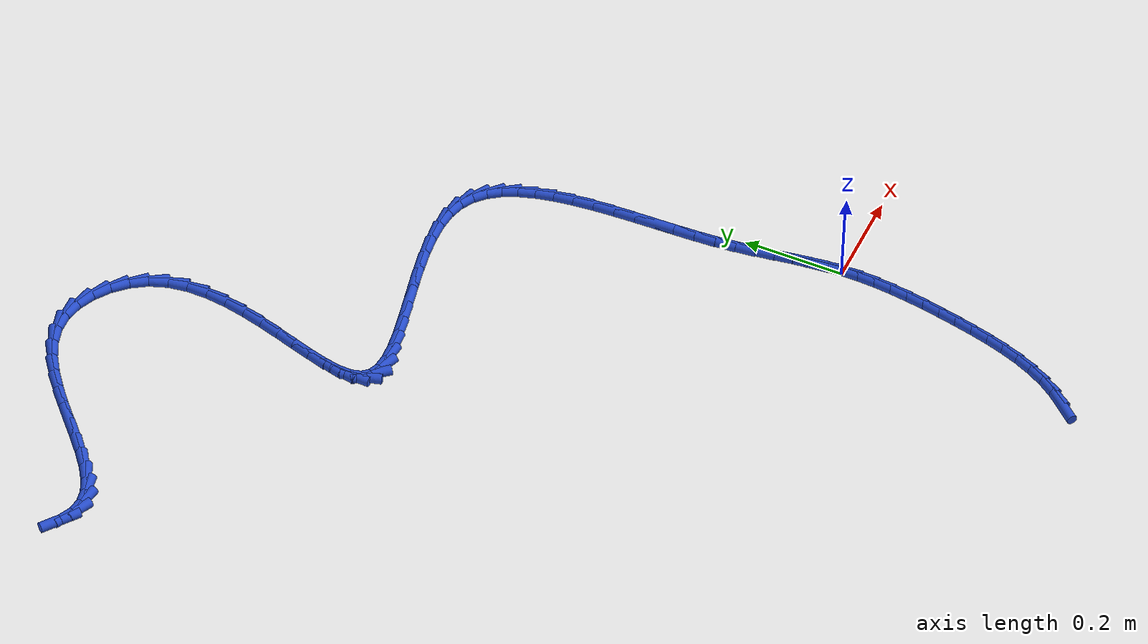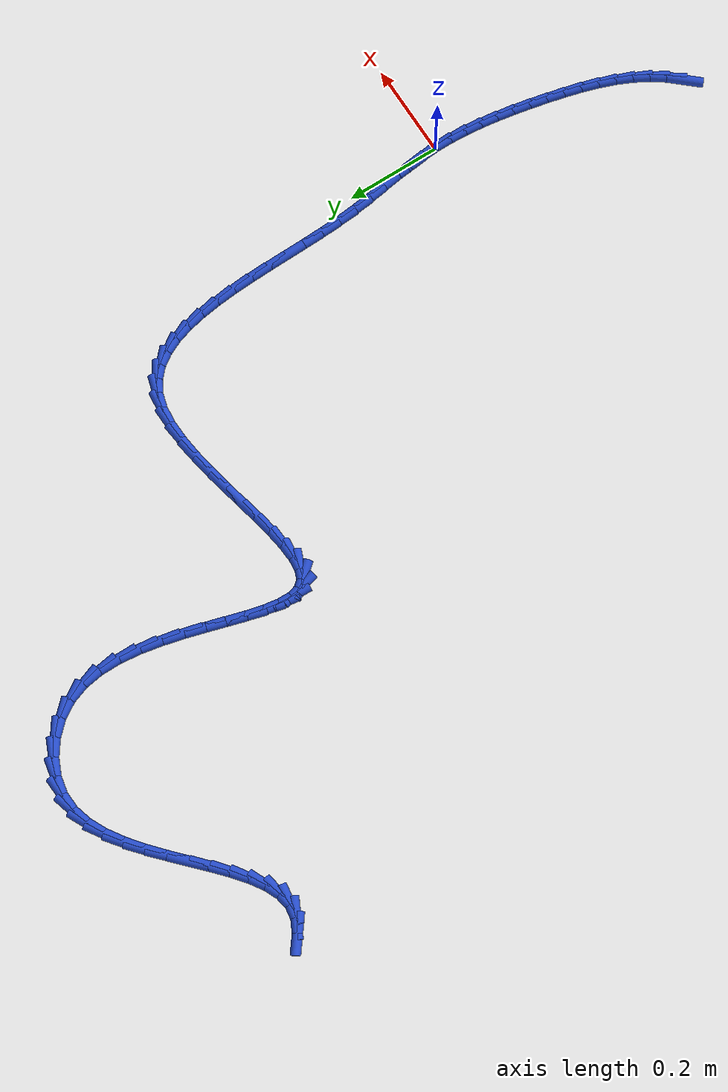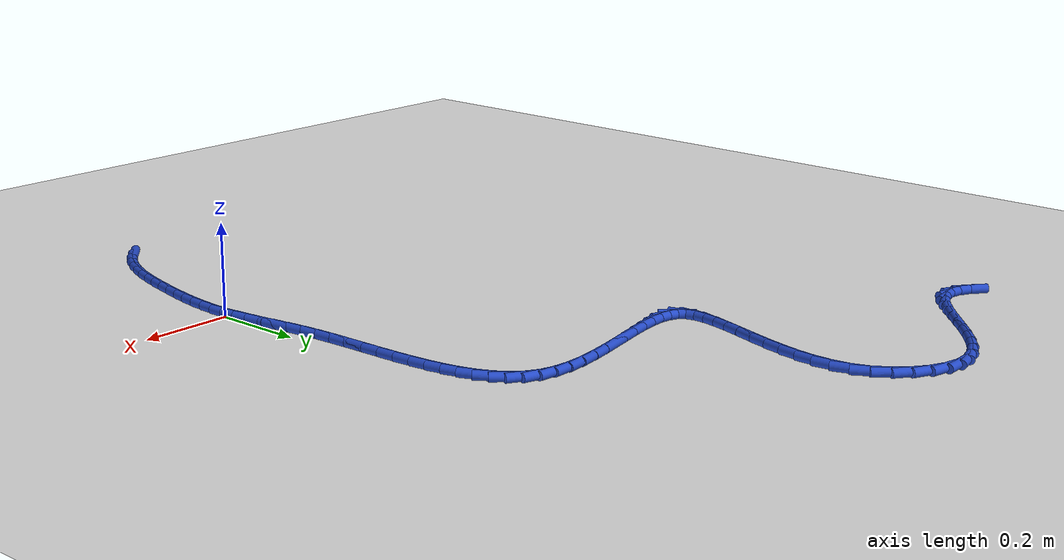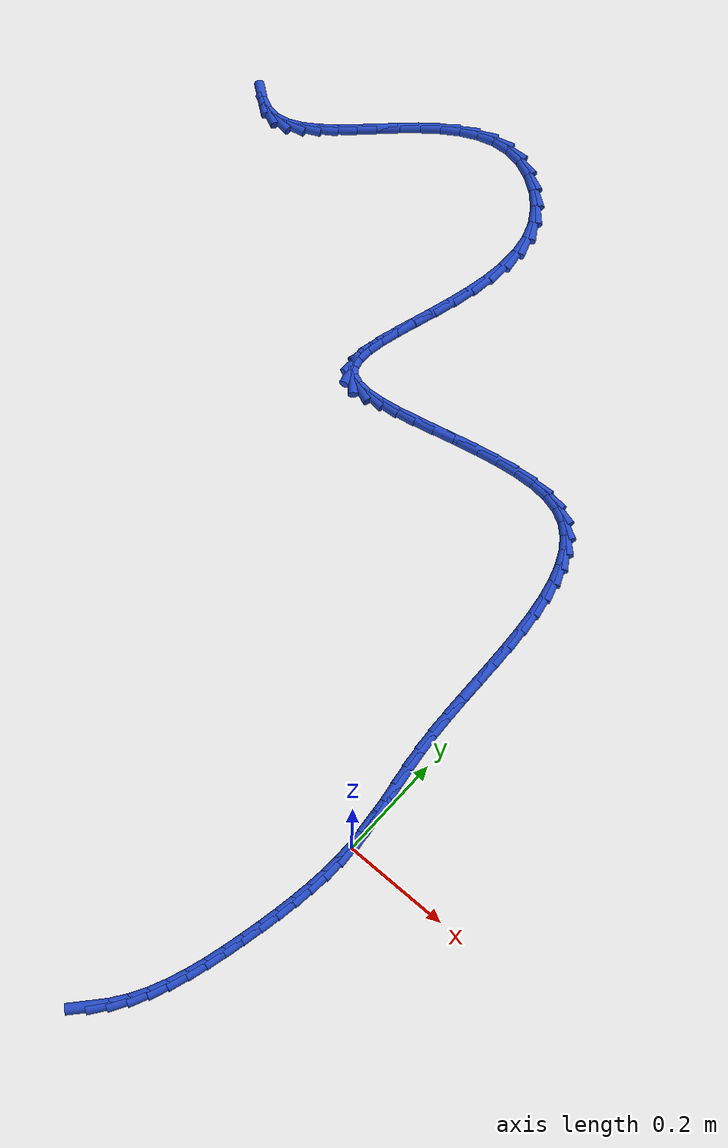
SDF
<sdf version="1.6">
 <world name="default">
  <model name="ground_plane">
   <static>1</static>
   <link name="link">
    <collision name="collision">
     <geometry><plane><normal>0 0 1</normal><size>100 100</size></plane></geometry>
     <surface><friction><ode><mu>100</mu><mu2>50</mu2></ode></friction></surface>
    </collision>
    <visual name="visual">
     <cast_shadows>0</cast_shadows>
     <geometry><plane><normal>0 0 1</normal><size>100 100</size></plane></geometry>
     <material>
      <script><uri>file://media/materials/scripts/gazebo.material</uri><name>Gazebo/WhiteGlow</name></script>
     </material>
    </visual>
   </link>
  </model>
  <model name="line">
   <link name="link_0">
    <pose>-1.734723475976807e-17 1.0408340855860843e-16 0.01 0 1.57 -1.5083408288933977</pose>
    <collision name="collision">
     <geometry><cylinder><radius>0.01</radius><length>0.08</length></cylinder></geometry>
    </collision>
    <visual name="visual">
     <material>
      <script><name>Gazebo/Blue</name><uri>file://media/materials/scripts/gazebo.material</uri></script>
     </material>
     <geometry><cylinder><radius>0.01</radius><length>0.08</length></cylinder></geometry>
    </visual>
   </link>
   <link name="link_1">
    <pose>-0.0021196836067384752 0.033894963377618756 0.01 0 1.57 -1.461341418618367</pose>
    <collision name="collision">
     <geometry><cylinder><radius>0.01</radius><length>0.08</length></cylinder></geometry>
    </collision>
    <visual name="visual">
     <material>
      <script><name>Gazebo/Blue</name><uri>file://media/materials/scripts/gazebo.material</uri></script>
     </material>
     <geometry><cylinder><radius>0.01</radius><length>0.08</length></cylinder></geometry>
    </visual>
   </link>
   <link name="link_2">
    <pose>-0.005830443476863865 0.06766164698499161 0.01 0 1.57 -1.4313954396183446</pose>
    <collision name="collision">
     <geometry><cylinder><radius>0.01</radius><length>0.08</length></cylinder></geometry>
    </collision>
    <visual name="visual">
     <material>
      <script><name>Gazebo/Blue</name><uri>file://media/materials/scripts/gazebo.material</uri></script>
     </material>
     <geometry><cylinder><radius>0.01</radius><length>0.08</length></cylinder></geometry>
    </visual>
   </link>
   <link name="link_3">
    <pose>-0.01060383328601112 0.10168173086542234 0.01 0 1.57 -1.4188233202473002</pose>
    <collision name="collision">
     <geometry><cylinder><radius>0.01</radius><length>0.08</length></cylinder></geometry>
    </collision>
    <visual name="visual">
     <material>
      <script><name>Gazebo/Blue</name><uri>file://media/materials/scripts/gazebo.material</uri></script>
     </material>
     <geometry><cylinder><radius>0.01</radius><length>0.08</length></cylinder></geometry>
    </visual>
   </link>
   <link name="link_4">
    <pose>-0.01591140670981516 0.13633689506221444 0.01 0 1.57 -1.4229340475392616</pose>
    <collision name="collision">
     <geometry><cylinder><radius>0.01</radius><length>0.08</length></cylinder></geometry>
    </collision>
    <visual name="visual">
     <material>
      <script><name>Gazebo/Blue</name><uri>file://media/materials/scripts/gazebo.material</uri></script>
     </material>
     <geometry><cylinder><radius>0.01</radius><length>0.08</length></cylinder></geometry>
    </visual>
   </link>
   <link name="link_5">
    <pose>-0.021224717423910914 0.1720088196186716 0.01 0 1.57 -1.4422786424298313</pose>
    <collision name="collision">
     <geometry><cylinder><radius>0.01</radius><length>0.08</length></cylinder></geometry>
    </collision>
    <visual name="visual">
     <material>
      <script><name>Gazebo/Blue</name><uri>file://media/materials/scripts/gazebo.material</uri></script>
     </material>
     <geometry><cylinder><radius>0.01</radius><length>0.08</length></cylinder></geometry>
    </visual>
   </link>
   <link name="link_6">
    <pose>-0.026015319103933298 0.2090791845780972 0.01 0 1.57 -1.4747929241966398</pose>
    <collision name="collision">
     <geometry><cylinder><radius>0.01</radius><length>0.08</length></cylinder></geometry>
    </collision>
    <visual name="visual">
     <material>
      <script><name>Gazebo/Blue</name><uri>file://media/materials/scripts/gazebo.material</uri></script>
     </material>
     <geometry><cylinder><radius>0.01</radius><length>0.08</length></cylinder></geometry>
    </visual>
   </link>
   <link name="link_7">
    <pose>-0.02975644251791767 0.2479280451275408 0.01 0 1.57 -1.5106430984727284</pose>
    <collision name="collision">
     <geometry><cylinder><radius>0.01</radius><length>0.08</length></cylinder></geometry>
    </collision>
    <visual name="visual">
     <material>
      <script><name>Gazebo/Blue</name><uri>file://media/materials/scripts/gazebo.material</uri></script>
     </material>
     <geometry><cylinder><radius>0.01</radius><length>0.08</length></cylinder></geometry>
    </visual>
   </link>
   <link name="link_8">
    <pose>-0.03220934392028913 0.2886564020543827 0.01 0 1.57 -1.5342893860453386</pose>
    <collision name="collision">
     <geometry><cylinder><radius>0.01</radius><length>0.08</length></cylinder></geometry>
    </collision>
    <visual name="visual">
     <material>
      <script><name>Gazebo/Blue</name><uri>file://media/materials/scripts/gazebo.material</uri></script>
     </material>
     <geometry><cylinder><radius>0.01</radius><length>0.08</length></cylinder></geometry>
    </visual>
   </link>
   <link name="link_9">
    <pose>-0.033747541319173534 0.3307720644175201 0.01 0 1.57 -1.5457556233718104</pose>
    <collision name="collision">
     <geometry><cylinder><radius>0.01</radius><length>0.08</length></cylinder></geometry>
    </collision>
    <visual name="visual">
     <material>
      <script><name>Gazebo/Blue</name><uri>file://media/materials/scripts/gazebo.material</uri></script>
     </material>
     <geometry><cylinder><radius>0.01</radius><length>0.08</length></cylinder></geometry>
    </visual>
   </link>
   <link name="link_10">
    <pose>-0.034822885776311055 0.37370694805013344 0.01 0 1.57 -1.5461557800907932</pose>
    <collision name="collision">
     <geometry><cylinder><radius>0.01</radius><length>0.08</length></cylinder></geometry>
    </collision>
    <visual name="visual">
     <material>
      <script><name>Gazebo/Blue</name><uri>file://media/materials/scripts/gazebo.material</uri></script>
     </material>
     <geometry><cylinder><radius>0.01</radius><length>0.08</length></cylinder></geometry>
    </visual>
   </link>
   <link name="link_11">
    <pose>-0.035887228353441936 0.41689296878540383 0.01 0 1.57 -1.5356993781176984</pose>
    <collision name="collision">
     <geometry><cylinder><radius>0.01</radius><length>0.08</length></cylinder></geometry>
    </collision>
    <visual name="visual">
     <material>
      <script><name>Gazebo/Blue</name><uri>file://media/materials/scripts/gazebo.material</uri></script>
     </material>
     <geometry><cylinder><radius>0.01</radius><length>0.08</length></cylinder></geometry>
    </visual>
   </link>
   <link name="link_12">
    <pose>-0.03739242011230638 0.4597620424565119 0.01 0 1.57 -1.5137439419873586</pose>
    <collision name="collision">
     <geometry><cylinder><radius>0.01</radius><length>0.08</length></cylinder></geometry>
    </collision>
    <visual name="visual">
     <material>
      <script><name>Gazebo/Blue</name><uri>file://media/materials/scripts/gazebo.material</uri></script>
     </material>
     <geometry><cylinder><radius>0.01</radius><length>0.08</length></cylinder></geometry>
    </visual>
   </link>
   <link name="link_13">
    <pose>-0.039790312114644594 0.5017460848966384 0.01 0 1.57 -1.4787219078508933</pose>
    <collision name="collision">
     <geometry><cylinder><radius>0.01</radius><length>0.08</length></cylinder></geometry>
    </collision>
    <visual name="visual">
     <material>
      <script><name>Gazebo/Blue</name><uri>file://media/materials/scripts/gazebo.material</uri></script>
     </material>
     <geometry><cylinder><radius>0.01</radius><length>0.08</length></cylinder></geometry>
    </visual>
   </link>
   <link name="link_14">
    <pose>-0.04353275542219681 0.5422770119389643 0.01 0 1.57 -1.4279462167485715</pose>
    <collision name="collision">
     <geometry><cylinder><radius>0.01</radius><length>0.08</length></cylinder></geometry>
    </collision>
    <visual name="visual">
     <material>
      <script><name>Gazebo/Blue</name><uri>file://media/materials/scripts/gazebo.material</uri></script>
     </material>
     <geometry><cylinder><radius>0.01</radius><length>0.08</length></cylinder></geometry>
    </visual>
   </link>
   <link name="link_15">
    <pose>-0.04907160109670318 0.5807867394166697 0.01 0 1.57 -1.3573123811966512</pose>
    <collision name="collision">
     <geometry><cylinder><radius>0.01</radius><length>0.08</length></cylinder></geometry>
    </collision>
    <visual name="visual">
     <material>
      <script><name>Gazebo/Blue</name><uri>file://media/materials/scripts/gazebo.material</uri></script>
     </material>
     <geometry><cylinder><radius>0.01</radius><length>0.08</length></cylinder></geometry>
    </visual>
   </link>
   <link name="link_16">
    <pose>-0.05685870019990401 0.6167071831629366 0.01 0 1.57 -1.261009788469272</pose>
    <collision name="collision">
     <geometry><cylinder><radius>0.01</radius><length>0.08</length></cylinder></geometry>
    </collision>
    <visual name="visual">
     <material>
      <script><name>Gazebo/Blue</name><uri>file://media/materials/scripts/gazebo.material</uri></script>
     </material>
     <geometry><cylinder><radius>0.01</radius><length>0.08</length></cylinder></geometry>
    </visual>
   </link>
   <link name="link_17">
    <pose>-0.06734590379353944 0.6494702590109447 0.01 0 1.57 -1.1316759051255703</pose>
    <collision name="collision">
     <geometry><cylinder><radius>0.01</radius><length>0.08</length></cylinder></geometry>
    </collision>
    <visual name="visual">
     <material>
      <script><name>Gazebo/Blue</name><uri>file://media/materials/scripts/gazebo.material</uri></script>
     </material>
     <geometry><cylinder><radius>0.01</radius><length>0.08</length></cylinder></geometry>
    </visual>
   </link>
   <link name="link_18">
    <pose>-0.0809850629393497 0.6785078827938752 0.01 0 1.57 -0.9621862711258534</pose>
    <collision name="collision">
     <geometry><cylinder><radius>0.01</radius><length>0.08</length></cylinder></geometry>
    </collision>
    <visual name="visual">
     <material>
      <script><name>Gazebo/Blue</name><uri>file://media/materials/scripts/gazebo.material</uri></script>
     </material>
     <geometry><cylinder><radius>0.01</radius><length>0.08</length></cylinder></geometry>
    </visual>
   </link>
   <link name="link_19">
    <pose>-0.09822802869907502 0.7032519703449092 0.01 0 1.57 -0.7510232009037348</pose>
    <collision name="collision">
     <geometry><cylinder><radius>0.01</radius><length>0.08</length></cylinder></geometry>
    </collision>
    <visual name="visual">
     <material>
      <script><name>Gazebo/Blue</name><uri>file://media/materials/scripts/gazebo.material</uri></script>
     </material>
     <geometry><cylinder><radius>0.01</radius><length>0.08</length></cylinder></geometry>
    </visual>
   </link>
   <link name="link_20">
    <pose>-0.11952665213445557 0.7231344374972271 0.01 0 1.57 -0.5105275131438748</pose>
    <collision name="collision">
     <geometry><cylinder><radius>0.01</radius><length>0.08</length></cylinder></geometry>
    </collision>
    <visual name="visual">
     <material>
      <script><name>Gazebo/Blue</name><uri>file://media/materials/scripts/gazebo.material</uri></script>
     </material>
     <geometry><cylinder><radius>0.01</radius><length>0.08</length></cylinder></geometry>
    </visual>
   </link>
   <link name="link_21">
    <pose>-0.14533278430723157 0.7375872000840092 0.01 0 1.57 -0.2709992494954977</pose>
    <collision name="collision">
     <geometry><cylinder><radius>0.01</radius><length>0.08</length></cylinder></geometry>
    </collision>
    <visual name="visual">
     <material>
      <script><name>Gazebo/Blue</name><uri>file://media/materials/scripts/gazebo.material</uri></script>
     </material>
     <geometry><cylinder><radius>0.01</radius><length>0.08</length></cylinder></geometry>
    </visual>
   </link>
   <link name="link_22">
    <pose>-0.1760303442376547 0.746116032730849 0.01 0 1.57 -0.08513310534744274</pose>
    <collision name="collision">
     <geometry><cylinder><radius>0.01</radius><length>0.08</length></cylinder></geometry>
    </collision>
    <visual name="visual">
     <material>
      <script><name>Gazebo/Blue</name><uri>file://media/materials/scripts/gazebo.material</uri></script>
     </material>
     <geometry><cylinder><radius>0.01</radius><length>0.08</length></cylinder></geometry>
    </visual>
   </link>
   <link name="link_23">
    <pose>-0.21118520508179212 0.7491161265793403 0.01 0 1.57 0.039958045719969366</pose>
    <collision name="collision">
     <geometry><cylinder><radius>0.01</radius><length>0.08</length></cylinder></geometry>
    </collision>
    <visual name="visual">
     <material>
      <script><name>Gazebo/Blue</name><uri>file://media/materials/scripts/gazebo.material</uri></script>
     </material>
     <geometry><cylinder><radius>0.01</radius><length>0.08</length></cylinder></geometry>
    </visual>
   </link>
   <link name="link_24">
    <pose>-0.2498216942836033 0.7475714657979832 0.01 0 1.57 0.12323756267443166</pose>
    <collision name="collision">
     <geometry><cylinder><radius>0.01</radius><length>0.08</length></cylinder></geometry>
    </collision>
    <visual name="visual">
     <material>
      <script><name>Gazebo/Blue</name><uri>file://media/materials/scripts/gazebo.material</uri></script>
     </material>
     <geometry><cylinder><radius>0.01</radius><length>0.08</length></cylinder></geometry>
    </visual>
   </link>
   <link name="link_25">
    <pose>-0.2909544740078793 0.7424765430845653 0.01 0 1.57 0.17752093928847582</pose>
    <collision name="collision">
     <geometry><cylinder><radius>0.01</radius><length>0.08</length></cylinder></geometry>
    </collision>
    <visual name="visual">
     <material>
      <script><name>Gazebo/Blue</name><uri>file://media/materials/scripts/gazebo.material</uri></script>
     </material>
     <geometry><cylinder><radius>0.01</radius><length>0.08</length></cylinder></geometry>
    </visual>
   </link>
   <link name="link_26">
    <pose>-0.3335982064194116 0.7348258511368757 0.01 0 1.57 0.21023814794837684</pose>
    <collision name="collision">
     <geometry><cylinder><radius>0.01</radius><length>0.08</length></cylinder></geometry>
    </collision>
    <visual name="visual">
     <material>
      <script><name>Gazebo/Blue</name><uri>file://media/materials/scripts/gazebo.material</uri></script>
     </material>
     <geometry><cylinder><radius>0.01</radius><length>0.08</length></cylinder></geometry>
    </visual>
   </link>
   <link name="link_27">
    <pose>-0.37676755368299153 0.725613882652703 0.01 0 1.57 0.2250794534777034</pose>
    <collision name="collision">
     <geometry><cylinder><radius>0.01</radius><length>0.08</length></cylinder></geometry>
    </collision>
    <visual name="visual">
     <material>
      <script><name>Gazebo/Blue</name><uri>file://media/materials/scripts/gazebo.material</uri></script>
     </material>
     <geometry><cylinder><radius>0.01</radius><length>0.08</length></cylinder></geometry>
    </visual>
   </link>
   <link name="link_28">
    <pose>-0.41947717796341 0.7158351303298354 0.01 0 1.57 0.22284819515604448</pose>
    <collision name="collision">
     <geometry><cylinder><radius>0.01</radius><length>0.08</length></cylinder></geometry>
    </collision>
    <visual name="visual">
     <material>
      <script><name>Gazebo/Blue</name><uri>file://media/materials/scripts/gazebo.material</uri></script>
     </material>
     <geometry><cylinder><radius>0.01</radius><length>0.08</length></cylinder></geometry>
    </visual>
   </link>
   <link name="link_29">
    <pose>-0.46074174142545843 0.7064840868660615 0.01 0 1.57 0.20140368319027765</pose>
    <collision name="collision">
     <geometry><cylinder><radius>0.01</radius><length>0.08</length></cylinder></geometry>
    </collision>
    <visual name="visual">
     <material>
      <script><name>Gazebo/Blue</name><uri>file://media/materials/scripts/gazebo.material</uri></script>
     </material>
     <geometry><cylinder><radius>0.01</radius><length>0.08</length></cylinder></geometry>
    </visual>
   </link>
   <link name="link_30">
    <pose>-0.49957590623392817 0.6985552449591703 0.01 0 1.57 0.15439084470876607</pose>
    <collision name="collision">
     <geometry><cylinder><radius>0.01</radius><length>0.08</length></cylinder></geometry>
    </collision>
    <visual name="visual">
     <material>
      <script><name>Gazebo/Blue</name><uri>file://media/materials/scripts/gazebo.material</uri></script>
     </material>
     <geometry><cylinder><radius>0.01</radius><length>0.08</length></cylinder></geometry>
    </visual>
   </link>
   <link name="link_31">
    <pose>-0.5349943345536103 0.6930430973069497 0.01 0 1.57 0.06763170143833858</pose>
    <collision name="collision">
     <geometry><cylinder><radius>0.01</radius><length>0.08</length></cylinder></geometry>
    </collision>
    <visual name="visual">
     <material>
      <script><name>Gazebo/Blue</name><uri>file://media/materials/scripts/gazebo.material</uri></script>
     </material>
     <geometry><cylinder><radius>0.01</radius><length>0.08</length></cylinder></geometry>
    </visual>
   </link>
   <link name="link_32">
    <pose>-0.5660116885492963 0.6909421366071886 0.01 0 1.57 -0.08967822274300016</pose>
    <collision name="collision">
     <geometry><cylinder><radius>0.01</radius><length>0.08</length></cylinder></geometry>
    </collision>
    <visual name="visual">
     <material>
      <script><name>Gazebo/Blue</name><uri>file://media/materials/scripts/gazebo.material</uri></script>
     </material>
     <geometry><cylinder><radius>0.01</radius><length>0.08</length></cylinder></geometry>
    </visual>
   </link>
   <link name="link_33">
    <pose>-0.5916426303857771 0.6932468555576756 0.01 0 1.57 -0.38056074144833524</pose>
    <collision name="collision">
     <geometry><cylinder><radius>0.01</radius><length>0.08</length></cylinder></geometry>
    </collision>
    <visual name="visual">
     <material>
      <script><name>Gazebo/Blue</name><uri>file://media/materials/scripts/gazebo.material</uri></script>
     </material>
     <geometry><cylinder><radius>0.01</radius><length>0.08</length></cylinder></geometry>
    </visual>
   </link>
   <link name="link_34">
    <pose>-0.6109018222278444 0.7009517468561992 0.01 0 1.57 -0.862504595825327</pose>
    <collision name="collision">
     <geometry><cylinder><radius>0.01</radius><length>0.08</length></cylinder></geometry>
    </collision>
    <visual name="visual">
     <material>
      <script><name>Gazebo/Blue</name><uri>file://media/materials/scripts/gazebo.material</uri></script>
     </material>
     <geometry><cylinder><radius>0.01</radius><length>0.08</length></cylinder></geometry>
    </visual>
   </link>
   <link name="link_35">
    <pose>-0.6229069722507989 0.7149672416532962 0.01 0 1.57 -1.3241362118176287</pose>
    <collision name="collision">
     <geometry><cylinder><radius>0.01</radius><length>0.08</length></cylinder></geometry>
    </collision>
    <visual name="visual">
     <material>
      <script><name>Gazebo/Blue</name><uri>file://media/materials/scripts/gazebo.material</uri></script>
     </material>
     <geometry><cylinder><radius>0.01</radius><length>0.08</length></cylinder></geometry>
    </visual>
   </link>
   <link name="link_36">
    <pose>-0.6280021634322428 0.7352033348586289 0.01 0 1.57 1.5449077284649313</pose>
    <collision name="collision">
     <geometry><cylinder><radius>0.01</radius><length>0.08</length></cylinder></geometry>
    </collision>
    <visual name="visual">
     <material>
      <script><name>Gazebo/Blue</name><uri>file://media/materials/scripts/gazebo.material</uri></script>
     </material>
     <geometry><cylinder><radius>0.01</radius><length>0.08</length></cylinder></geometry>
    </visual>
   </link>
   <link name="link_37">
    <pose>-0.6273364176967755 0.760913378655054 0.01 0 1.57 1.3994939330093321</pose>
    <collision name="collision">
     <geometry><cylinder><radius>0.01</radius><length>0.08</length></cylinder></geometry>
    </collision>
    <visual name="visual">
     <material>
      <script><name>Gazebo/Blue</name><uri>file://media/materials/scripts/gazebo.material</uri></script>
     </material>
     <geometry><cylinder><radius>0.01</radius><length>0.08</length></cylinder></geometry>
    </visual>
   </link>
   <link name="link_38">
    <pose>-0.6220728031550834 0.7913392668086541 0.01 0 1.57 1.3230136876789107</pose>
    <collision name="collision">
     <geometry><cylinder><radius>0.01</radius><length>0.08</length></cylinder></geometry>
    </collision>
    <visual name="visual">
     <material>
      <script><name>Gazebo/Blue</name><uri>file://media/materials/scripts/gazebo.material</uri></script>
     </material>
     <geometry><cylinder><radius>0.01</radius><length>0.08</length></cylinder></geometry>
    </visual>
   </link>
   <link name="link_39">
    <pose>-0.6133743879178521 0.8257228930855103 0.01 0 1.57 1.2867971268913088</pose>
    <collision name="collision">
     <geometry><cylinder><radius>0.01</radius><length>0.08</length></cylinder></geometry>
    </collision>
    <visual name="visual">
     <material>
      <script><name>Gazebo/Blue</name><uri>file://media/materials/scripts/gazebo.material</uri></script>
     </material>
     <geometry><cylinder><radius>0.01</radius><length>0.08</length></cylinder></geometry>
    </visual>
   </link>
   <link name="link_40">
    <pose>-0.6024042400957679 0.8633061512517048 0.01 0 1.57 1.2777042595199484</pose>
    <collision name="collision">
     <geometry><cylinder><radius>0.01</radius><length>0.08</length></cylinder></geometry>
    </collision>
    <visual name="visual">
     <material>
      <script><name>Gazebo/Blue</name><uri>file://media/materials/scripts/gazebo.material</uri></script>
     </material>
     <geometry><cylinder><radius>0.01</radius><length>0.08</length></cylinder></geometry>
    </visual>
   </link>
   <link name="link_41">
    <pose>-0.5903254277995165 0.9033309350733199 0.01 0 1.57 1.2901092063953967</pose>
    <collision name="collision">
     <geometry><cylinder><radius>0.01</radius><length>0.08</length></cylinder></geometry>
    </collision>
    <visual name="visual">
     <material>
      <script><name>Gazebo/Blue</name><uri>file://media/materials/scripts/gazebo.material</uri></script>
     </material>
     <geometry><cylinder><radius>0.01</radius><length>0.08</length></cylinder></geometry>
    </visual>
   </link>
   <link name="link_42">
    <pose>-0.5783010191397838 0.9450391383164376 0.01 0 1.57 1.3225408035875452</pose>
    <collision name="collision">
     <geometry><cylinder><radius>0.01</radius><length>0.08</length></cylinder></geometry>
    </collision>
    <visual name="visual">
     <material>
      <script><name>Gazebo/Blue</name><uri>file://media/materials/scripts/gazebo.material</uri></script>
     </material>
     <geometry><cylinder><radius>0.01</radius><length>0.08</length></cylinder></geometry>
    </visual>
   </link>
   <link name="link_43">
    <pose>-0.5674940822272564 0.9876726547471402 0.01 0 1.57 1.376407268110528</pose>
    <collision name="collision">
     <geometry><cylinder><radius>0.01</radius><length>0.08</length></cylinder></geometry>
    </collision>
    <visual name="visual">
     <material>
      <script><name>Gazebo/Blue</name><uri>file://media/materials/scripts/gazebo.material</uri></script>
     </material>
     <geometry><cylinder><radius>0.01</radius><length>0.08</length></cylinder></geometry>
    </visual>
   </link>
   <link name="link_44">
    <pose>-0.5590676851726197 1.0304733781315087 0.01 0 1.57 1.4556292413725587</pose>
    <collision name="collision">
     <geometry><cylinder><radius>0.01</radius><length>0.08</length></cylinder></geometry>
    </collision>
    <visual name="visual">
     <material>
      <script><name>Gazebo/Blue</name><uri>file://media/materials/scripts/gazebo.material</uri></script>
     </material>
     <geometry><cylinder><radius>0.01</radius><length>0.08</length></cylinder></geometry>
    </visual>
   </link>
   <link name="link_45">
    <pose>-0.5541848960865599 1.0726832022356259 0.01 0 1.57 1.5664862830328488</pose>
    <collision name="collision">
     <geometry><cylinder><radius>0.01</radius><length>0.08</length></cylinder></geometry>
    </collision>
    <visual name="visual">
     <material>
      <script><name>Gazebo/Blue</name><uri>file://media/materials/scripts/gazebo.material</uri></script>
     </material>
     <geometry><cylinder><radius>0.01</radius><length>0.08</length></cylinder></geometry>
    </visual>
   </link>
   <link name="link_46">
    <pose>-0.554008783079763 1.1135440208255738 0.01 0 1.57 -1.4249215587054873</pose>
    <collision name="collision">
     <geometry><cylinder><radius>0.01</radius><length>0.08</length></cylinder></geometry>
    </collision>
    <visual name="visual">
     <material>
      <script><name>Gazebo/Blue</name><uri>file://media/materials/scripts/gazebo.material</uri></script>
     </material>
     <geometry><cylinder><radius>0.01</radius><length>0.08</length></cylinder></geometry>
    </visual>
   </link>
   <link name="link_47">
    <pose>-0.5597024142629147 1.1522977276674342 0.01 0 1.57 -1.2300463110513864</pose>
    <collision name="collision">
     <geometry><cylinder><radius>0.01</radius><length>0.08</length></cylinder></geometry>
    </collision>
    <visual name="visual">
     <material>
      <script><name>Gazebo/Blue</name><uri>file://media/materials/scripts/gazebo.material</uri></script>
     </material>
     <geometry><cylinder><radius>0.01</radius><length>0.08</length></cylinder></geometry>
    </visual>
   </link>
   <link name="link_48">
    <pose>-0.5724277444427394 1.1881860898677867 0.01 0 1.57 -1.009454232464364</pose>
    <collision name="collision">
     <geometry><cylinder><radius>0.01</radius><length>0.08</length></cylinder></geometry>
    </collision>
    <visual name="visual">
     <material>
      <script><name>Gazebo/Blue</name><uri>file://media/materials/scripts/gazebo.material</uri></script>
     </material>
     <geometry><cylinder><radius>0.01</radius><length>0.08</length></cylinder></geometry>
    </visual>
   </link>
   <link name="link_49">
    <pose>-0.5926679500706684 1.220373650584087 0.01 0 1.57 -0.8046204868408289</pose>
    <collision name="collision">
     <geometry><cylinder><radius>0.01</radius><length>0.08</length></cylinder></geometry>
    </collision>
    <visual name="visual">
     <material>
      <script><name>Gazebo/Blue</name><uri>file://media/materials/scripts/gazebo.material</uri></script>
     </material>
     <geometry><cylinder><radius>0.01</radius><length>0.08</length></cylinder></geometry>
    </visual>
   </link>
   <link name="link_50">
    <pose>-0.6190757357491053 1.2478167019831052 0.01 0 1.57 -0.6101670155278066</pose>
    <collision name="collision">
     <geometry><cylinder><radius>0.01</radius><length>0.08</length></cylinder></geometry>
    </collision>
    <visual name="visual">
     <material>
      <script><name>Gazebo/Blue</name><uri>file://media/materials/scripts/gazebo.material</uri></script>
     </material>
     <geometry><cylinder><radius>0.01</radius><length>0.08</length></cylinder></geometry>
    </visual>
   </link>
   <link name="link_51">
    <pose>-0.6499983434442149 1.2694367840464613 0.01 0 1.57 -0.41086556855378076</pose>
    <collision name="collision">
     <geometry><cylinder><radius>0.01</radius><length>0.08</length></cylinder></geometry>
    </collision>
    <visual name="visual">
     <material>
      <script><name>Gazebo/Blue</name><uri>file://media/materials/scripts/gazebo.material</uri></script>
     </material>
     <geometry><cylinder><radius>0.01</radius><length>0.08</length></cylinder></geometry>
    </visual>
   </link>
   <link name="link_52">
    <pose>-0.6837830151221617 1.2841554367557733 0.01 0 1.57 -0.1902404863592725</pose>
    <collision name="collision">
     <geometry><cylinder><radius>0.01</radius><length>0.08</length></cylinder></geometry>
    </collision>
    <visual name="visual">
     <material>
      <script><name>Gazebo/Blue</name><uri>file://media/materials/scripts/gazebo.material</uri></script>
     </material>
     <geometry><cylinder><radius>0.01</radius><length>0.08</length></cylinder></geometry>
    </visual>
   </link>
   <link name="link_53">
    <pose>-0.7187769927491107 1.2908942000926602 0.01 0 1.57 0.058759145812935995</pose>
    <collision name="collision">
     <geometry><cylinder><radius>0.01</radius><length>0.08</length></cylinder></geometry>
    </collision>
    <visual name="visual">
     <material>
      <script><name>Gazebo/Blue</name><uri>file://media/materials/scripts/gazebo.material</uri></script>
     </material>
     <geometry><cylinder><radius>0.01</radius><length>0.08</length></cylinder></geometry>
    </visual>
   </link>
   <link name="link_54">
    <pose>-0.7535105833220984 1.2888509318835053 0.01 0 1.57 0.2857165944162569</pose>
    <collision name="collision">
     <geometry><cylinder><radius>0.01</radius><length>0.08</length></cylinder></geometry>
    </collision>
    <visual name="visual">
     <material>
      <script><name>Gazebo/Blue</name><uri>file://media/materials/scripts/gazebo.material</uri></script>
     </material>
     <geometry><cylinder><radius>0.01</radius><length>0.08</length></cylinder></geometry>
    </visual>
   </link>
   <link name="link_55">
    <pose>-0.787585847081912 1.278841191298426 0.01 0 1.57 0.4605246924555378</pose>
    <collision name="collision">
     <geometry><cylinder><radius>0.01</radius><length>0.08</length></cylinder></geometry>
    </collision>
    <visual name="visual">
     <material>
      <script><name>Gazebo/Blue</name><uri>file://media/materials/scripts/gazebo.material</uri></script>
     </material>
     <geometry><cylinder><radius>0.01</radius><length>0.08</length></cylinder></geometry>
    </visual>
   </link>
   <link name="link_56">
    <pose>-0.8209936995555409 1.262267474587205 0.01 0 1.57 0.586162431384819</pose>
    <collision name="collision">
     <geometry><cylinder><radius>0.01</radius><length>0.08</length></cylinder></geometry>
    </collision>
    <visual name="visual">
     <material>
      <script><name>Gazebo/Blue</name><uri>file://media/materials/scripts/gazebo.material</uri></script>
     </material>
     <geometry><cylinder><radius>0.01</radius><length>0.08</length></cylinder></geometry>
    </visual>
   </link>
   <link name="link_57">
    <pose>-0.8537256021502603 1.2405331019497985 0.01 0 1.57 0.6719526054823745</pose>
    <collision name="collision">
     <geometry><cylinder><radius>0.01</radius><length>0.08</length></cylinder></geometry>
    </collision>
    <visual name="visual">
     <material>
      <script><name>Gazebo/Blue</name><uri>file://media/materials/scripts/gazebo.material</uri></script>
     </material>
     <geometry><cylinder><radius>0.01</radius><length>0.08</length></cylinder></geometry>
    </visual>
   </link>
   <link name="link_58">
    <pose>-0.8857730162733456 1.2150413935861626 0.01 0 1.57 0.7261995659306844</pose>
    <collision name="collision">
     <geometry><cylinder><radius>0.01</radius><length>0.08</length></cylinder></geometry>
    </collision>
    <visual name="visual">
     <material>
      <script><name>Gazebo/Blue</name><uri>file://media/materials/scripts/gazebo.material</uri></script>
     </material>
     <geometry><cylinder><radius>0.01</radius><length>0.08</length></cylinder></geometry>
    </visual>
   </link>
   <link name="link_59">
    <pose>-0.9171274033320718 1.1871956696962538 0.01 0 1.57 0.7541816310576566</pose>
    <collision name="collision">
     <geometry><cylinder><radius>0.01</radius><length>0.08</length></cylinder></geometry>
    </collision>
    <visual name="visual">
     <material>
      <script><name>Gazebo/Blue</name><uri>file://media/materials/scripts/gazebo.material</uri></script>
     </material>
     <geometry><cylinder><radius>0.01</radius><length>0.08</length></cylinder></geometry>
    </visual>
   </link>
   <link name="link_60">
    <pose>-0.9477802247337143 1.158399250480029 0.01 0 1.57 0.7579729174065732</pose>
    <collision name="collision">
     <geometry><cylinder><radius>0.01</radius><length>0.08</length></cylinder></geometry>
    </collision>
    <visual name="visual">
     <material>
      <script><name>Gazebo/Blue</name><uri>file://media/materials/scripts/gazebo.material</uri></script>
     </material>
     <geometry><cylinder><radius>0.01</radius><length>0.08</length></cylinder></geometry>
    </visual>
   </link>
   <link name="link_61">
    <pose>-0.977722941885548 1.1300554561374438 0.01 0 1.57 0.7363237827904611</pose>
    <collision name="collision">
     <geometry><cylinder><radius>0.01</radius><length>0.08</length></cylinder></geometry>
    </collision>
    <visual name="visual">
     <material>
      <script><name>Gazebo/Blue</name><uri>file://media/materials/scripts/gazebo.material</uri></script>
     </material>
     <geometry><cylinder><radius>0.01</radius><length>0.08</length></cylinder></geometry>
    </visual>
   </link>
   <link name="link_62">
    <pose>-1.006947016194849 1.1035676068684552 0.01 0 1.57 0.6838968438230816</pose>
    <collision name="collision">
     <geometry><cylinder><radius>0.01</radius><length>0.08</length></cylinder></geometry>
    </collision>
    <visual name="visual">
     <material>
      <script><name>Gazebo/Blue</name><uri>file://media/materials/scripts/gazebo.material</uri></script>
     </material>
     <geometry><cylinder><radius>0.01</radius><length>0.08</length></cylinder></geometry>
    </visual>
   </link>
   <link name="link_63">
    <pose>-1.0354439090688916 1.080339022873019 0.01 0 1.57 0.5894613005288506</pose>
    <collision name="collision">
     <geometry><cylinder><radius>0.01</radius><length>0.08</length></cylinder></geometry>
    </collision>
    <visual name="visual">
     <material>
      <script><name>Gazebo/Blue</name><uri>file://media/materials/scripts/gazebo.material</uri></script>
     </material>
     <geometry><cylinder><radius>0.01</radius><length>0.08</length></cylinder></geometry>
    </visual>
   </link>
   <link name="link_64">
    <pose>-1.0632050819149514 1.0617730243510919 0.01 0 1.57 0.4333456037957656</pose>
    <collision name="collision">
     <geometry><cylinder><radius>0.01</radius><length>0.08</length></cylinder></geometry>
    </collision>
    <visual name="visual">
     <material>
      <script><name>Gazebo/Blue</name><uri>file://media/materials/scripts/gazebo.material</uri></script>
     </material>
     <geometry><cylinder><radius>0.01</radius><length>0.08</length></cylinder></geometry>
    </visual>
   </link>
   <link name="link_65">
    <pose>-1.0902219961403037 1.0492729315026306 0.01 0 1.57 0.18925660998806196</pose>
    <collision name="collision">
     <geometry><cylinder><radius>0.01</radius><length>0.08</length></cylinder></geometry>
    </collision>
    <visual name="visual">
     <material>
      <script><name>Gazebo/Blue</name><uri>file://media/materials/scripts/gazebo.material</uri></script>
     </material>
     <geometry><cylinder><radius>0.01</radius><length>0.08</length></cylinder></geometry>
    </visual>
   </link>
   <link name="link_66">
    <pose>-1.1164861131522235 1.0442420645275907 0.01 0 1.57 -0.146575021665601</pose>
    <collision name="collision">
     <geometry><cylinder><radius>0.01</radius><length>0.08</length></cylinder></geometry>
    </collision>
    <visual name="visual">
     <material>
      <script><name>Gazebo/Blue</name><uri>file://media/materials/scripts/gazebo.material</uri></script>
     </material>
     <geometry><cylinder><radius>0.01</radius><length>0.08</length></cylinder></geometry>
    </visual>
   </link>
   <link name="link_67">
    <pose>-1.1420036069043422 1.0480093092403648 0.01 0 1.57 -0.4587525783404024</pose>
    <collision name="collision">
     <geometry><cylinder><radius>0.01</radius><length>0.08</length></cylinder></geometry>
    </collision>
    <visual name="visual">
     <material>
      <script><name>Gazebo/Blue</name><uri>file://media/materials/scripts/gazebo.material</uri></script>
     </material>
     <geometry><cylinder><radius>0.01</radius><length>0.08</length></cylinder></geometry>
    </visual>
   </link>
   <link name="link_68">
    <pose>-1.1670790331713046 1.0603939645372567 0.01 0 1.57 -0.6561861651003267</pose>
    <collision name="collision">
     <geometry><cylinder><radius>0.01</radius><length>0.08</length></cylinder></geometry>
    </collision>
    <visual name="visual">
     <material>
      <script><name>Gazebo/Blue</name><uri>file://media/materials/scripts/gazebo.material</uri></script>
     </material>
     <geometry><cylinder><radius>0.01</radius><length>0.08</length></cylinder></geometry>
    </visual>
   </link>
   <link name="link_245">
    <pose>-0.14610552386078346 -0.5019813753589127 0.01 0 1.57 0.8447731166359167</pose>
    <collision name="collision">
     <geometry><cylinder><radius>0.01</radius><length>0.08</length></cylinder></geometry>
    </collision>
    <visual name="visual">
     <material>
      <script><name>Gazebo/Blue</name><uri>file://media/materials/scripts/gazebo.material</uri></script>
     </material>
     <geometry><cylinder><radius>0.01</radius><length>0.08</length></cylinder></geometry>
    </visual>
   </link>
   <link name="link_246">
    <pose>-0.1235005642020205 -0.47651906526323007 0.01 0 1.57 0.9527647167699381</pose>
    <collision name="collision">
     <geometry><cylinder><radius>0.01</radius><length>0.08</length></cylinder></geometry>
    </collision>
    <visual name="visual">
     <material>
      <script><name>Gazebo/Blue</name><uri>file://media/materials/scripts/gazebo.material</uri></script>
     </material>
     <geometry><cylinder><radius>0.01</radius><length>0.08</length></cylinder></geometry>
    </visual>
   </link>
   <link name="link_247">
    <pose>-0.1037192462178317 -0.448694952759962 0.01 0 1.57 1.0560595969467417</pose>
    <collision name="collision">
     <geometry><cylinder><radius>0.01</radius><length>0.08</length></cylinder></geometry>
    </collision>
    <visual name="visual">
     <material>
      <script><name>Gazebo/Blue</name><uri>file://media/materials/scripts/gazebo.material</uri></script>
     </material>
     <geometry><cylinder><radius>0.01</radius><length>0.08</length></cylinder></geometry>
    </visual>
   </link>
   <link name="link_248">
    <pose>-0.08670286637510109 -0.4186090991206426 0.01 0 1.57 1.1426374537356936</pose>
    <collision name="collision">
     <geometry><cylinder><radius>0.01</radius><length>0.08</length></cylinder></geometry>
    </collision>
    <visual name="visual">
     <material>
      <script><name>Gazebo/Blue</name><uri>file://media/materials/scripts/gazebo.material</uri></script>
     </material>
     <geometry><cylinder><radius>0.01</radius><length>0.08</length></cylinder></geometry>
    </visual>
   </link>
   <link name="link_249">
    <pose>-0.07210533948045922 -0.3866246511657259 0.01 0 1.57 1.2128924653914925</pose>
    <collision name="collision">
     <geometry><cylinder><radius>0.01</radius><length>0.08</length></cylinder></geometry>
    </collision>
    <visual name="visual">
     <material>
      <script><name>Gazebo/Blue</name><uri>file://media/materials/scripts/gazebo.material</uri></script>
     </material>
     <geometry><cylinder><radius>0.01</radius><length>0.08</length></cylinder></geometry>
    </visual>
   </link>
   <link name="link_250">
    <pose>-0.05957158805763148 -0.35311298776388417 0.01 0 1.57 1.2681359063165123</pose>
    <collision name="collision">
     <geometry><cylinder><radius>0.01</radius><length>0.08</length></cylinder></geometry>
    </collision>
    <visual name="visual">
     <material>
      <script><name>Gazebo/Blue</name><uri>file://media/materials/scripts/gazebo.material</uri></script>
     </material>
     <geometry><cylinder><radius>0.01</radius><length>0.08</length></cylinder></geometry>
    </visual>
   </link>
   <link name="link_251">
    <pose>-0.048746534630343244 -0.3184454877837892 0.01 0 1.57 1.309731096716371</pose>
    <collision name="collision">
     <geometry><cylinder><radius>0.01</radius><length>0.08</length></cylinder></geometry>
    </collision>
    <visual name="visual">
     <material>
      <script><name>Gazebo/Blue</name><uri>file://media/materials/scripts/gazebo.material</uri></script>
     </material>
     <geometry><cylinder><radius>0.01</radius><length>0.08</length></cylinder></geometry>
    </visual>
   </link>
   <link name="link_252">
    <pose>-0.039275101722319655 -0.2829935300941124 0.01 0 1.57 1.3388060574183251</pose>
    <collision name="collision">
     <geometry><cylinder><radius>0.01</radius><length>0.08</length></cylinder></geometry>
    </collision>
    <visual name="visual">
     <material>
      <script><name>Gazebo/Blue</name><uri>file://media/materials/scripts/gazebo.material</uri></script>
     </material>
     <geometry><cylinder><radius>0.01</radius><length>0.08</length></cylinder></geometry>
    </visual>
   </link>
   <link name="link_253">
    <pose>-0.03080221185728662 -0.24712849356352765 0.01 0 1.57 1.357487985004698</pose>
    <collision name="collision">
     <geometry><cylinder><radius>0.01</radius><length>0.08</length></cylinder></geometry>
    </collision>
    <visual name="visual">
     <material>
      <script><name>Gazebo/Blue</name><uri>file://media/materials/scripts/gazebo.material</uri></script>
     </material>
     <geometry><cylinder><radius>0.01</radius><length>0.08</length></cylinder></geometry>
    </visual>
   </link>
   <link name="link_254">
    <pose>-0.023019459620508415 -0.2111976294259163 0.01 0 1.57 1.376928185526402</pose>
    <collision name="collision">
     <geometry><cylinder><radius>0.01</radius><length>0.08</length></cylinder></geometry>
    </collision>
    <visual name="visual">
     <material>
      <script><name>Gazebo/Blue</name><uri>file://media/materials/scripts/gazebo.material</uri></script>
     </material>
     <geometry><cylinder><radius>0.01</radius><length>0.08</length></cylinder></geometry>
    </visual>
   </link>
   <link name="link_255">
    <pose>-0.015983234749848446 -0.1753596040546519 0.01 0 1.57 1.4024904193651726</pose>
    <collision name="collision">
     <geometry><cylinder><radius>0.01</radius><length>0.08</length></cylinder></geometry>
    </collision>
    <visual name="visual">
     <material>
      <script><name>Gazebo/Blue</name><uri>file://media/materials/scripts/gazebo.material</uri></script>
     </material>
     <geometry><cylinder><radius>0.01</radius><length>0.08</length></cylinder></geometry>
    </visual>
   </link>
   <link name="link_256">
    <pose>-0.009921537083956062 -0.13968436809679408 0.01 0 1.57 1.4345752745685239</pose>
    <collision name="collision">
     <geometry><cylinder><radius>0.01</radius><length>0.08</length></cylinder></geometry>
    </collision>
    <visual name="visual">
     <material>
      <script><name>Gazebo/Blue</name><uri>file://media/materials/scripts/gazebo.material</uri></script>
     </material>
     <geometry><cylinder><radius>0.01</radius><length>0.08</length></cylinder></geometry>
    </visual>
   </link>
   <link name="link_257">
    <pose>-0.005063365699428148 -0.10424135563237144 0.01 0 1.57 1.4736214596677653</pose>
    <collision name="collision">
     <geometry><cylinder><radius>0.01</radius><length>0.08</length></cylinder></geometry>
    </collision>
    <visual name="visual">
     <material>
      <script><name>Gazebo/Blue</name><uri>file://media/materials/scripts/gazebo.material</uri></script>
     </material>
     <geometry><cylinder><radius>0.01</radius><length>0.08</length></cylinder></geometry>
    </visual>
   </link>
   <link name="link_258">
    <pose>-0.0016377196728615834 -0.0691000007414125 0.01 0 1.57 1.520103291083597</pose>
    <collision name="collision">
     <geometry><cylinder><radius>0.01</radius><length>0.08</length></cylinder></geometry>
    </collision>
    <visual name="visual">
     <material>
      <script><name>Gazebo/Blue</name><uri>file://media/materials/scripts/gazebo.material</uri></script>
     </material>
     <geometry><cylinder><radius>0.01</radius><length>0.08</length></cylinder></geometry>
    </visual>
   </link>
   <link name="link_259">
    <pose>0.00012640191914675691 -0.034329737503945836 0.01 0 1.57 -1.5671143485122787</pose>
    <collision name="collision">
     <geometry><cylinder><radius>0.01</radius><length>0.08</length></cylinder></geometry>
    </collision>
    <visual name="visual">
     <material>
      <script><name>Gazebo/Blue</name><uri>file://media/materials/scripts/gazebo.material</uri></script>
     </material>
     <geometry><cylinder><radius>0.01</radius><length>0.08</length></cylinder></geometry>
    </visual>
   </link>
   <link name="link_260">
    <pose>-1.9081958235744878e-17 2.7755575615628914e-17 0.01 0 1.57 -1.5044850798826268</pose>
    <collision name="collision">
     <geometry><cylinder><radius>0.01</radius><length>0.08</length></cylinder></geometry>
    </collision>
    <visual name="visual">
     <material>
      <script><name>Gazebo/Blue</name><uri>file://media/materials/scripts/gazebo.material</uri></script>
     </material>
     <geometry><cylinder><radius>0.01</radius><length>0.08</length></cylinder></geometry>
    </visual>
   </link>
   <link name="link_261">
    <pose>-0.002245924506898785 0.03381977769039651 0.01 0 1.57 -1.4334477642544619</pose>
    <collision name="collision">
     <geometry><cylinder><radius>0.01</radius><length>0.08</length></cylinder></geometry>
    </collision>
    <visual name="visual">
     <material>
      <script><name>Gazebo/Blue</name><uri>file://media/materials/scripts/gazebo.material</uri></script>
     </material>
     <geometry><cylinder><radius>0.01</radius><length>0.08</length></cylinder></geometry>
    </visual>
   </link>
   <link name="link_262">
    <pose>-0.006840370678146423 0.06706016148721511 0.01 0 1.57 -1.4691444143916315</pose>
    <collision name="collision">
     <geometry><cylinder><radius>0.01</radius><length>0.08</length></cylinder></geometry>
    </collision>
    <visual name="visual">
     <material>
      <script><name>Gazebo/Blue</name><uri>file://media/materials/scripts/gazebo.material</uri></script>
     </material>
     <geometry><cylinder><radius>0.01</radius><length>0.08</length></cylinder></geometry>
    </visual>
   </link>
  </model>
 </world>
</sdf>
